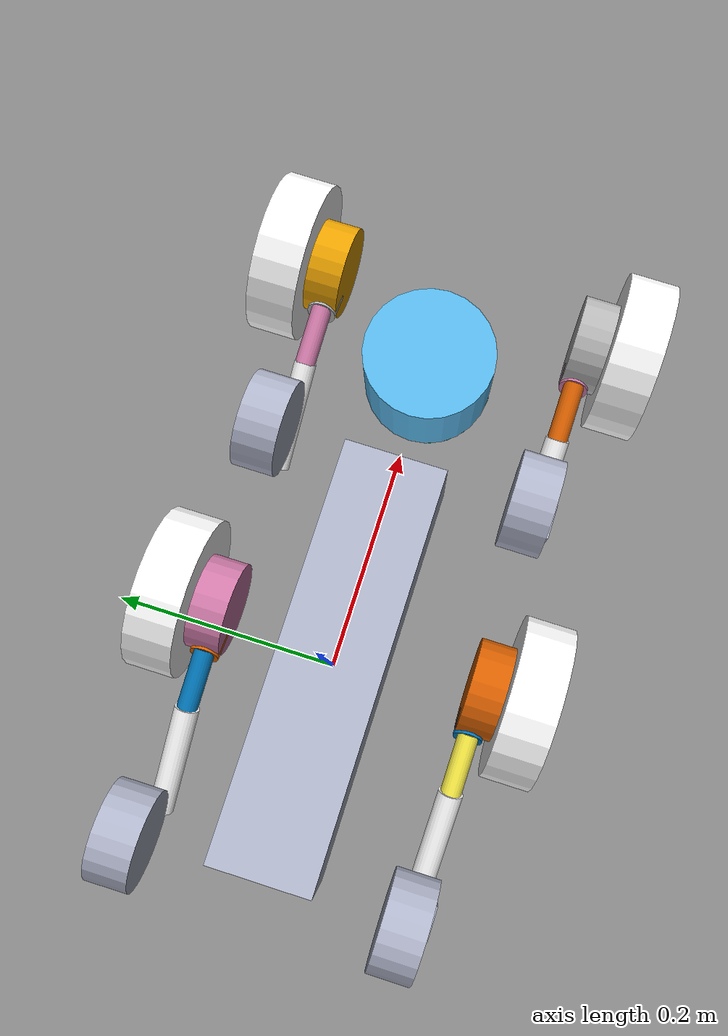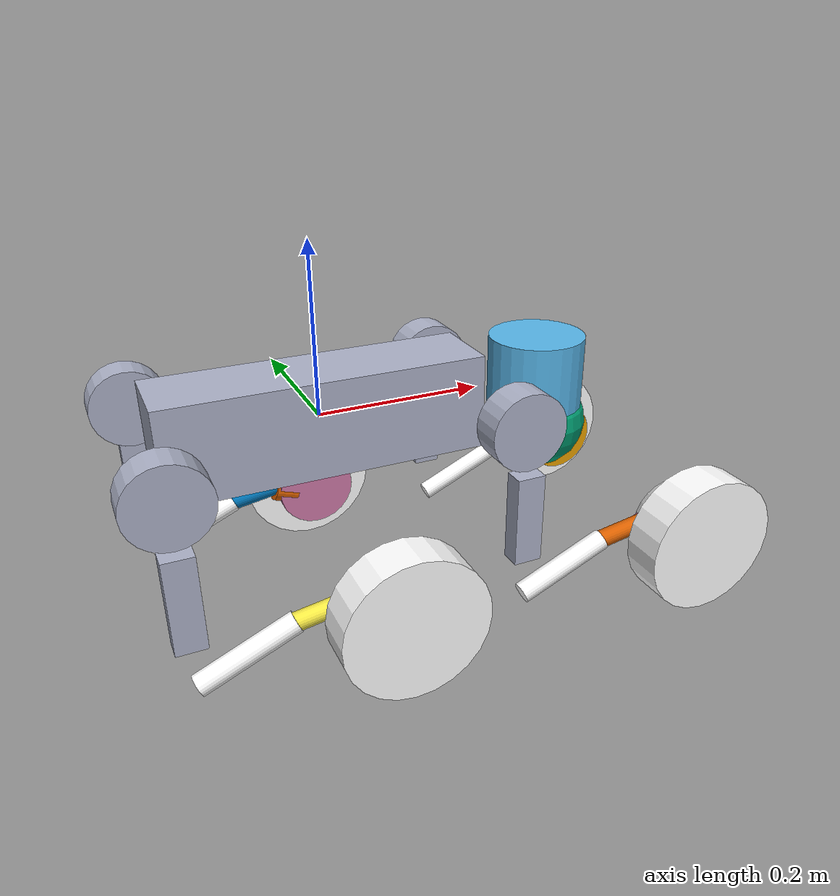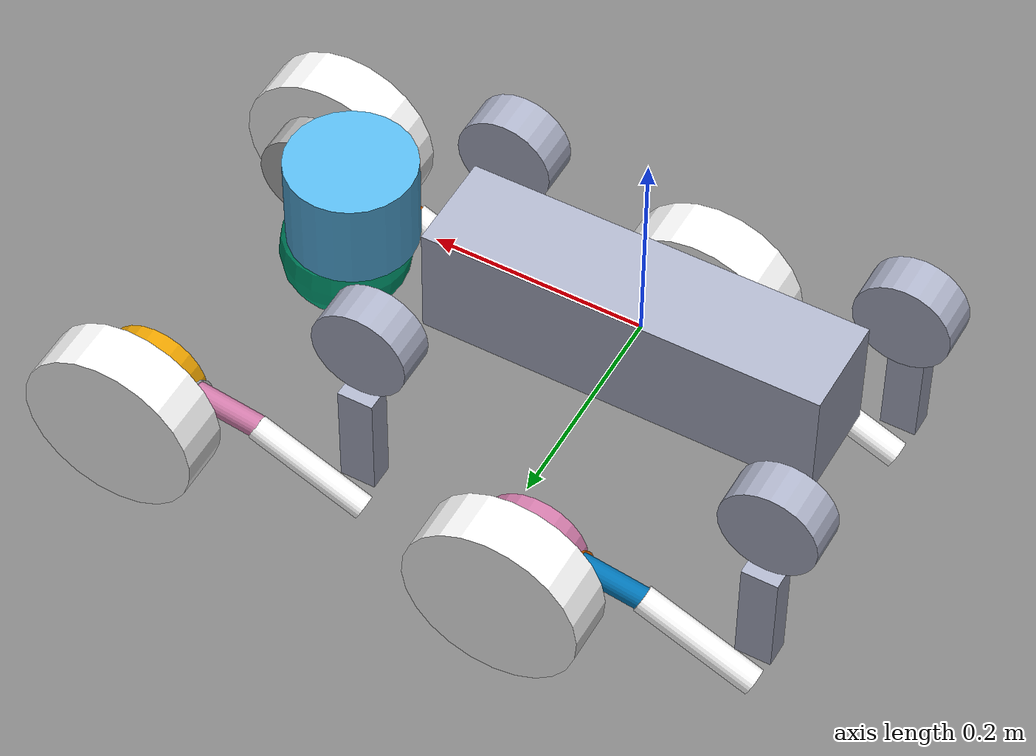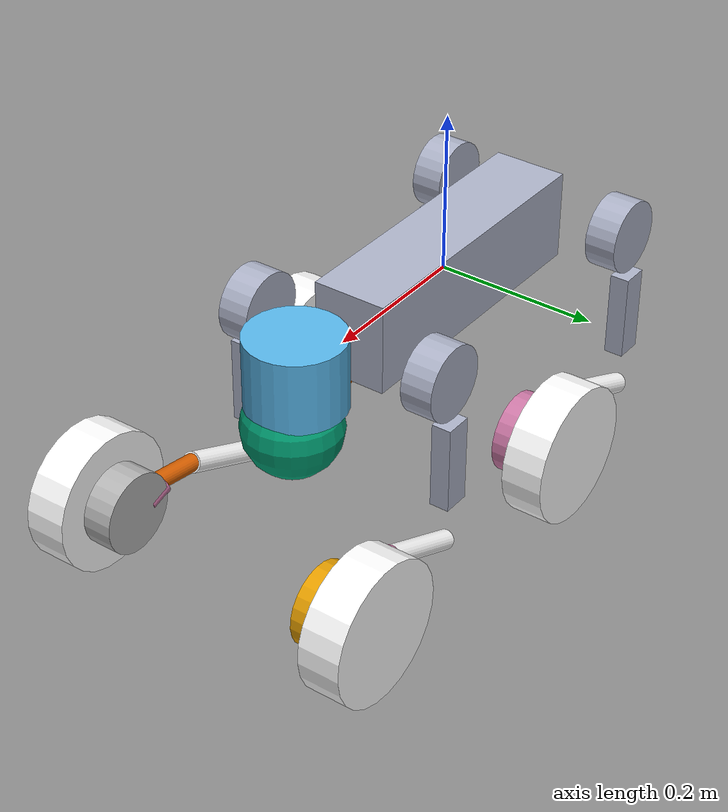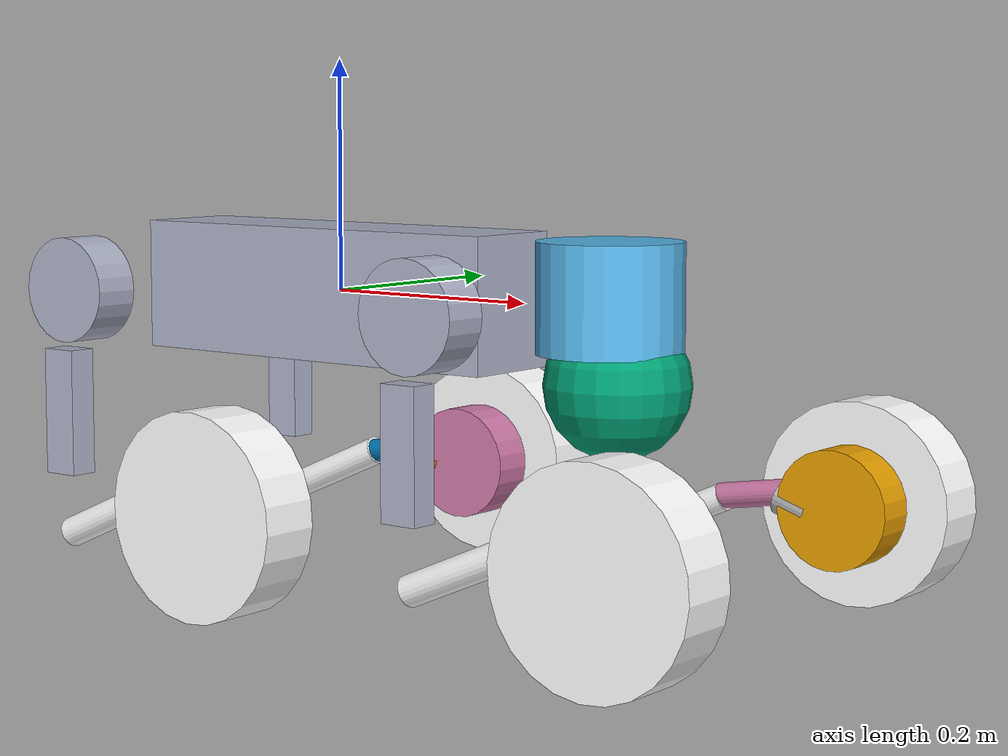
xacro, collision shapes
<?xml version="1.0"?>
<robot xmlns:xacro="http://ros.org/wiki/xacro">

  <!-- material palette (derived from the upstream per-visual colors) -->
  <material name="magi_mat_1"><color rgba="0.671705 0.692426 0.77427 1"/></material>
  <material name="magi_mat_2"><color rgba="1 1 1 1"/></material>

  <link name="base">
    <inertial>
      <origin xyz="0.021112 0 -0.005366" rpy="0 0 0" />
      <mass value="6.921" />
      <inertia ixx="0.02448" ixy="0.00012166" ixz="0.0014849" iyy="0.098077" iyz="-3.12E-05" izz="0.107" />
    </inertial>
    <visual>
      <origin xyz="0 0 0" rpy="0 0 0" />
      <geometry>
        <mesh filename="package://magi_description/meshes/base.dae" />
      </geometry>
      <material name="magi_mat_1"><color rgba="0.671705 0.692426 0.77427 1"/></material></visual>
    <collision>
      <origin rpy="0 0 0" xyz="0 0 0" />
      <geometry>
        <box size="0.3762 0.0935 0.114" />
      </geometry>
    </collision>
  </link>
  <link name="Head_upper">
    <inertial>
      <origin xyz="0 0 0" rpy="0 0 0" />
      <mass value="0.001" />
      <inertia ixx="9.6e-06" ixy="0" ixz="0" iyy="9.6e-06" iyz="0" izz="9.6e-06" />
    </inertial>
    <collision>
      <origin xyz="0 0 0" rpy="0 0 0" />
      <geometry>
        <cylinder radius="0.06" length="0.09" />
      </geometry>
    </collision>
  </link>
  <joint name="Head_upper_joint" type="fixed" dont_collapse="true">
    <origin xyz="0.285 0 0.01" rpy="0 0 0" />
    <parent link="base" />
    <child link="Head_upper" />
    <axis xyz="0 0 0" />
  </joint>
  <link name="Head_lower">
    <inertial>
      <origin xyz="0 0 0" rpy="0 0 0" />
      <mass value="0.001" />
      <inertia ixx="9.6e-06" ixy="0" ixz="0" iyy="9.6e-06" iyz="0" izz="9.6e-06" />
    </inertial>
    <collision>
      <origin xyz="0 0 0" rpy="0 0 0" />
      <geometry>
        <sphere radius="0.06" />
      </geometry>
    </collision>
  </link>
  <joint name="Head_lower_joint" type="fixed" dont_collapse="true">
    <origin xyz="0.008 0 -0.07" rpy="0 0 0" />
    <parent link="Head_upper" />
    <child link="Head_lower" />
    <axis xyz="0 0 0" />
  </joint>
  <link name="FL_hip">
    <inertial>
      <origin xyz="-0.0054 0.00194 -0.000105" rpy="0 0 0" />
      <mass value="0.678" />
      <inertia ixx="0.00048" ixy="-3.01E-06" ixz="1.11E-06" iyy="0.000884" iyz="-1.42E-06" izz="0.000596" />
    </inertial>
    <visual>
      <origin xyz="0 0 0" rpy="0 0 0" />
      <geometry>
        <mesh filename="package://magi_description/meshes/hip.dae" />
      </geometry>
      <material name="magi_mat_1"><color rgba="0.671705 0.692426 0.77427 1"/></material></visual>
    <collision>
      <origin rpy="1.5707963267948966 0 0" xyz="0 0.08 0" />
      <geometry>
        <cylinder length="0.04" radius="0.046" />
      </geometry>
    </collision>
  </link>
  <joint name="FL_hip_joint" type="revolute">
    <origin xyz="0.1934 0.0465 0" rpy="0 0 0" />
    <parent link="base" />
    <child link="FL_hip" />
    <axis xyz="1 0 0" />
    <limit lower="-1.0472" upper="1.0472" effort="23.7" velocity="30.1" />
  </joint>
  <link name="FL_thigh">
    <inertial>
      <origin xyz="-0.00374 -0.0223 -0.0327" rpy="0 0 0" />
      <mass value="1.152" />
      <inertia ixx="0.00584" ixy="8.72E-05" ixz="-0.000289" iyy="0.0058" iyz="0.000808" izz="0.00103" />
    </inertial>
    <visual>
      <origin xyz="0 0 0" rpy="0 0 0" />
      <geometry>
        <mesh filename="package://magi_description/meshes/thigh.dae" />
      </geometry>
      <material name="magi_mat_1"><color rgba="0.671705 0.692426 0.77427 1"/></material></visual>
    <collision>
      <origin rpy="0 1.5707963267948966 0" xyz="0 0 -0.1065" />
      <geometry>
        <box size="0.11 0.0245 0.034" />
      </geometry>
    </collision>
  </link>
  <joint name="FL_thigh_joint" type="revolute">
    <origin xyz="0 0.0955 0" rpy="0 0 0" />
    <parent link="FL_hip" />
    <child link="FL_thigh" />
    <axis xyz="0 1 0" />
    <limit lower="-1.5707963267948966" upper="3.4907" effort="23.7" velocity="30.1" />
  </joint>
  <link name="FL_calf">
    <inertial>
      <origin xyz="0.00548 -0.000975 -0.115" rpy="0 0 0" />
      <mass value="0.154" />
      <inertia ixx="0.00108" ixy="3.4E-07" ixz="1.72E-05" iyy="0.0011" iyz="8.28E-06" izz="3.29E-05" />
    </inertial>
    <visual>
      <origin xyz="0 0 0" rpy="0 0 0" />
      <geometry>
        <mesh filename="package://magi_description/meshes/calf.stl" />
      </geometry>
      <material name="magi_mat_2"><color rgba="1 1 1 1"/></material></visual>
    <collision>
      <origin rpy="0 -0.21 0" xyz="0.008 0 -0.06" />
      <geometry>
        <cylinder length="0.12" radius="0.012" />
      </geometry>
    </collision>
  </link>
  <joint name="FL_calf_joint" type="revolute">
    <origin xyz="0 0 -0.213" rpy="0 0 0" />
    <parent link="FL_thigh" />
    <child link="FL_calf" />
    <axis xyz="0 1 0" />
    <limit lower="-2.7227" upper="-0.83776" effort="35.55" velocity="20.07" />
  </joint>
  <link name="FL_calflower">
    <collision>
      <origin rpy="0 0 0" xyz="0 0 0" />
      <geometry>
        <cylinder length="0.065" radius="0.011" />
      </geometry>
    </collision>
  </link>
  <joint name="FL_calflower_joint" type="fixed">
    <origin xyz="0.020 0 -0.148" rpy="0 0.05 0" />
    <parent link="FL_calf" />
    <child link="FL_calflower" />
    <axis xyz="0 0 0" />
  </joint>
  <link name="FL_calflower1">
    <collision>
      <origin rpy="0 0 0" xyz="0 0 0" />
      <geometry>
        <cylinder length="0.03" radius="0.0155" />
      </geometry>
    </collision>
  </link>
  <joint name="FL_calflower1_joint" type="fixed">
    <origin xyz="-0.01 0 -0.04" rpy="0 0.48 0" />
    <parent link="FL_calflower" />
    <child link="FL_calflower1" />
    <axis xyz="0 0 0" />
  </joint>

  <link name="FL_foot_motor">
    <inertial>
      <origin xyz="0 0.0 0" rpy="0 0 0" />
      <mass value="0.646" />
      <inertia ixx="0.001" ixy="0" ixz="0" iyy="0.0016" iyz="0" izz="0.001" />
    </inertial>
    <collision>
      <origin rpy="1.5707963267948966 0 0" xyz="0 0 0" />
      <geometry>
        <cylinder length="0.05" radius="0.05" />
      </geometry>
    </collision>
  </link>

  <joint name="FL_foot_motor_joint" type="fixed">
    <origin xyz="-0.00 0.01 -0.2264" rpy="0 0.0 0" />
    <parent link="FL_calf" />
    <child link="FL_foot_motor" />
    <axis xyz="0 0 0" />
  </joint>

  <link name="FL_foot">
    <inertial>
      <origin xyz="0 0.06 0" rpy="0 0 0" />
      <mass value="0.520" />
      <inertia ixx="0.0007" ixy="0" ixz="0" iyy="0.0012" iyz="0" izz="0.0007" />
    </inertial>
    <visual>
      <origin xyz="0 0 0" rpy="0 0 0" />
      <geometry>
        <mesh filename="package://magi_description/meshes/left_wheel.dae" />
      </geometry>
      <material name="magi_mat_2"><color rgba="1 1 1 1"/></material></visual>
    <collision>
      <origin rpy="1.5707963267948966 0 0" xyz="0 0.0481 0" />
      <geometry>
        <cylinder radius="0.086" length="0.0518" />
      </geometry>
    </collision>
  </link>
  <joint name="FL_foot_joint" type="continuous">
    <origin xyz="0 0 -0.2264" rpy="0 0 0" />
    <parent link="FL_calf" />
    <child link="FL_foot" />
    <axis xyz="0 1 0" />

      <limit effort="23.7" velocity="30.1" />
  </joint>

  <link name="FR_hip">
    <inertial>
      <origin xyz="-0.0054 -0.00194 -0.000105" rpy="0 0 0" />
      <mass value="0.678" />
      <inertia ixx="0.00048" ixy="3.01E-06" ixz="1.11E-06" iyy="0.000884" iyz="1.42E-06" izz="0.000596" />
    </inertial>
    <visual>
      <origin xyz="0 0 0" rpy="3.1415 0 0" />
      <geometry>
        <mesh filename="package://magi_description/meshes/hip.dae" />
      </geometry>
      <material name="magi_mat_1"><color rgba="0.671705 0.692426 0.77427 1"/></material></visual>
    <collision>
      <origin rpy="1.5707963267948966 0 0" xyz="0 -0.08 0" />
      <geometry>
        <cylinder length="0.04" radius="0.046" />
      </geometry>
    </collision>
  </link>
  <joint name="FR_hip_joint" type="revolute">
    <origin xyz="0.1934 -0.0465 0" rpy="0 0 0" />
    <parent link="base" />
    <child link="FR_hip" />
    <axis xyz="1 0 0" />
    <limit lower="-1.0472" upper="1.0472" effort="23.7" velocity="30.1" />
  </joint>
  <link name="FR_thigh">
    <inertial>
      <origin xyz="-0.00374 0.0223 -0.0327" rpy="0 0 0" />
      <mass value="1.152" />
      <inertia ixx="0.00584" ixy="-8.72E-05" ixz="-0.000289" iyy="0.0058" iyz="-0.000808" izz="0.00103" />
    </inertial>
    <visual>
      <origin xyz="0 0 0" rpy="0 0 0" />
      <geometry>
        <mesh filename="package://magi_description/meshes/thigh_mirror.dae" />
      </geometry>
      <material name="magi_mat_1"><color rgba="0.671705 0.692426 0.77427 1"/></material></visual>
    <collision>
      <origin rpy="0 1.5707963267948966 0" xyz="0 0 -0.1065" />
      <geometry>
        <box size="0.11 0.0245 0.034" />
      </geometry>
    </collision>
  </link>
  <joint name="FR_thigh_joint" type="revolute">
    <origin xyz="0 -0.0955 0" rpy="0 0 0" />
    <parent link="FR_hip" />
    <child link="FR_thigh" />
    <axis xyz="0 1 0" />
    <limit lower="-1.5707963267948966" upper="3.4907" effort="23.7" velocity="30.1" />
  </joint>
  <link name="FR_calf">
    <inertial>
      <origin xyz="0.00548 0.000975 -0.115" rpy="0 0 0" />
      <mass value="0.154" />
      <inertia ixx="0.00108" ixy="-3.4E-07" ixz="1.72E-05" iyy="0.0011" iyz="-8.28E-06" izz="3.29E-05" />
    </inertial>
    <visual>
      <origin xyz="0 0 0" rpy="0 0 0" />
      <geometry>
        <mesh filename="package://magi_description/meshes/calf_mirror.stl" />
      </geometry>
      <material name="magi_mat_2"><color rgba="1 1 1 1"/></material></visual>
    <collision>
      <origin rpy="0 -0.2 0" xyz="0.01 0 -0.06" />
      <geometry>
        <cylinder length="0.12" radius="0.013" />
      </geometry>
    </collision>
  </link>
  <joint name="FR_calf_joint" type="revolute">
    <origin xyz="0 0 -0.213" rpy="0 0 0" />
    <parent link="FR_thigh" />
    <child link="FR_calf" />
    <axis xyz="0 1 0" />
    <limit lower="-2.7227" upper="-0.83776" effort="35.55" velocity="20.07" />
  </joint>
  <link name="FR_calflower">
    <collision>
      <origin rpy="0 0 0" xyz="0 0 0" />
      <geometry>
        <cylinder length="0.065" radius="0.011" />
      </geometry>
    </collision>
  </link>
  <joint name="FR_calflower_joint" type="fixed">
    <origin xyz="0.020 0 -0.148" rpy="0 0.05 0" />
    <parent link="FR_calf" />
    <child link="FR_calflower" />
    <axis xyz="0 0 0" />
  </joint>
  <link name="FR_calflower1">
    <collision>
      <origin rpy="0 0 0" xyz="0 0 0" />
      <geometry>
        <cylinder length="0.03" radius="0.0155" />
      </geometry>
    </collision>
  </link>
  <joint name="FR_calflower1_joint" type="fixed">
    <origin xyz="-0.01 0 -0.04" rpy="0 0.48 0" />
    <parent link="FR_calflower" />
    <child link="FR_calflower1" />
    <axis xyz="0 0 0" />
  </joint>

  <link name="FR_foot_motor">
    <inertial>
      <origin xyz="0 0.0 0" rpy="0 0 0" />
      <mass value="0.646" />
      <inertia ixx="0.001" ixy="0" ixz="0" iyy="0.0016" iyz="0" izz="0.001" />
    </inertial>
    <collision>
      <origin rpy="1.5707963267948966 0 0" xyz="0 0 0" />
      <geometry>
        <cylinder length="0.05" radius="0.05" />
      </geometry>
    </collision>
  </link>

  <joint name="FR_foot_motor_joint" type="fixed">
    <origin xyz="0.0 -0.01 -0.2264" rpy="0 0.0 0" />
    <parent link="FR_calf" />
    <child link="FR_foot_motor" />
    <axis xyz="0 0 0" />
  </joint>

  <link name="FR_foot">
    <inertial>
      <origin xyz="0 -0.06 0" rpy="0 0 0" />
      <mass value="0.520" />
      <inertia ixx="0.0007" ixy="0" ixz="0" iyy="0.0012" iyz="0" izz="0.0007" />
    </inertial>
    <visual>
      <origin xyz="0 0 0" rpy="0 0 0" />
      <geometry>
        <mesh filename="package://magi_description/meshes/right_wheel.dae" />
      </geometry>
      <material name="magi_mat_2"><color rgba="1 1 1 1"/></material></visual>
    <collision>
      <origin rpy="1.5707963267948966 0 0" xyz="0 -0.0481 0" />
      <geometry>
        <cylinder radius="0.086" length="0.0518" />
      </geometry>
    </collision>
  </link>
  <joint name="FR_foot_joint" type="continuous">
    <origin xyz="0 0 -0.2264" rpy="0 0 0" />
    <parent link="FR_calf" />
    <child link="FR_foot" />
    <axis xyz="0 1 0" />
      <limit effort="23.7" velocity="30.1" />
  </joint>

  <link name="RL_hip">
    <inertial>
      <origin xyz="0.0054 0.00194 -0.000105" rpy="0 0 0" />
      <mass value="0.678" />
      <inertia ixx="0.00048" ixy="3.01E-06" ixz="-1.11E-06" iyy="0.000884" iyz="-1.42E-06" izz="0.000596" />
    </inertial>
    <visual>
      <origin xyz="0 0 0" rpy="0 3.1415 0" />
      <geometry>
        <mesh filename="package://magi_description/meshes/hip.dae" />
      </geometry>
      <material name="magi_mat_1"><color rgba="0.671705 0.692426 0.77427 1"/></material></visual>
    <collision>
      <origin rpy="1.5707963267948966 0 0" xyz="0 0.08 0" />
      <geometry>
        <cylinder length="0.04" radius="0.046" />
      </geometry>
    </collision>
  </link>
  <joint name="RL_hip_joint" type="revolute">
    <origin xyz="-0.1934 0.0465 0" rpy="0 0 0" />
    <parent link="base" />
    <child link="RL_hip" />
    <axis xyz="1 0 0" />
    <limit lower="-1.0472" upper="1.0472" effort="23.7" velocity="30.1" />
  </joint>
  <link name="RL_thigh">
    <inertial>
      <origin xyz="-0.00374 -0.0223 -0.0327" rpy="0 0 0" />
      <mass value="1.152" />
      <inertia ixx="0.00584" ixy="8.72E-05" ixz="-0.000289" iyy="0.0058" iyz="0.000808" izz="0.00103" />
    </inertial>
    <visual>
      <origin xyz="0 0 0" rpy="0 0 0" />
      <geometry>
        <mesh filename="package://magi_description/meshes/thigh.dae" />
      </geometry>
      <material name="magi_mat_1"><color rgba="0.671705 0.692426 0.77427 1"/></material></visual>
    <collision>
      <origin rpy="0 1.5707963267948966 0" xyz="0 0 -0.1065" />
      <geometry>
        <box size="0.11 0.0245 0.034" />
      </geometry>
    </collision>
  </link>
  <joint name="RL_thigh_joint" type="revolute">
    <origin xyz="0 0.0955 0" rpy="0 0 0" />
    <parent link="RL_hip" />
    <child link="RL_thigh" />
    <axis xyz="0 1 0" />
    <limit lower="-0.5236" upper="4.5379" effort="23.7" velocity="30.1" />
  </joint>
  <link name="RL_calf">
    <inertial>
      <origin xyz="0.00548 -0.000975 -0.115" rpy="0 0 0" />
      <mass value="0.154" />
      <inertia ixx="0.00108" ixy="3.4E-07" ixz="1.72E-05" iyy="0.0011" iyz="8.28E-06" izz="3.29E-05" />
    </inertial>
    <visual>
      <origin xyz="0 0 0" rpy="0 0 0" />
      <geometry>
        <mesh filename="package://magi_description/meshes/calf.stl" />
      </geometry>
      <material name="magi_mat_2"><color rgba="1 1 1 1"/></material></visual>
    <collision>
      <origin rpy="0 -0.2 0" xyz="0.01 0 -0.06" />
      <geometry>
        <cylinder length="0.12" radius="0.013" />
      </geometry>
    </collision>
  </link>
  <joint name="RL_calf_joint" type="revolute">
    <origin xyz="0 0 -0.213" rpy="0 0 0" />
    <parent link="RL_thigh" />
    <child link="RL_calf" />
    <axis xyz="0 1 0" />
    <limit lower="-2.7227" upper="-0.83776" effort="35.55" velocity="20.07" />
  </joint>
  <link name="RL_calflower">
    <collision>
      <origin rpy="0 0 0" xyz="0 0 0" />
      <geometry>
        <cylinder length="0.065" radius="0.011" />
      </geometry>
    </collision>
  </link>
  <joint name="RL_calflower_joint" type="fixed">
    <origin xyz="0.020 0 -0.148" rpy="0 0.05 0" />
    <parent link="RL_calf" />
    <child link="RL_calflower" />
    <axis xyz="0 0 0" />
  </joint>
  <link name="RL_calflower1">
    <collision>
      <origin rpy="0 0 0" xyz="0 0 0" />
      <geometry>
        <cylinder length="0.03" radius="0.0155" />
      </geometry>
    </collision>
  </link>
  <joint name="RL_calflower1_joint" type="fixed">
    <origin xyz="-0.01 0 -0.04" rpy="0 0.48 0" />
    <parent link="RL_calflower" />
    <child link="RL_calflower1" />
    <axis xyz="0 0 0" />
  </joint>

  <link name="RL_foot_motor">
  <inertial>
    <origin xyz="0 0.0 0" rpy="0 0 0" />
    <mass value="0.646" />
    <inertia ixx="0.001" ixy="0" ixz="0" iyy="0.0016" iyz="0" izz="0.001" />
  </inertial>
  <collision>
    <origin rpy="1.5707963267948966 0 0" xyz="0 0 0" />
    <geometry>
      <cylinder length="0.05" radius="0.05" />
    </geometry>
  </collision>
</link>

<joint name="RL_foot_motor_joint" type="fixed">
  <origin xyz="0.00 0.01 -0.2264" rpy="0 0.0 0" />
  <parent link="RL_calf" />
  <child link="RL_foot_motor" />
  <axis xyz="0 0 0" />
</joint>

  <link name="RL_foot">
    <inertial>
      <origin xyz="0 0.06 0" rpy="0 0 0" />
      <mass value="0.520" />
      <inertia ixx="0.0007" ixy="0" ixz="0" iyy="0.0012" iyz="0" izz="0.0007" />
    </inertial>
    <visual>
      <origin xyz="0 0 0" rpy="0 0 0" />
      <geometry>
        <mesh filename="package://magi_description/meshes/left_wheel.dae" />
      </geometry>
      <material name="magi_mat_2"><color rgba="1 1 1 1"/></material></visual>
    <collision>
      <origin rpy="1.5707963267948966 0 0" xyz="0 0.0481 0" />
      <geometry>
        <cylinder radius="0.086" length="0.0518" />
      </geometry>
    </collision>
  </link>
  <joint name="RL_foot_joint" type="continuous">
    <origin xyz="0.0 0 -0.2264" rpy="0 0 0" />
    <parent link="RL_calf" />
    <child link="RL_foot" />
    <axis xyz="0 1 0" />
      <limit effort="23.7" velocity="30.1" />
  </joint>

  <link name="RR_hip">
    <inertial>
      <origin xyz="0.0054 -0.00194 -0.000105" rpy="0 0 0" />
      <mass value="0.678" />
      <inertia ixx="0.00048" ixy="-3.01E-06" ixz="-1.11E-06" iyy="0.000884" iyz="1.42E-06" izz="0.000596" />
    </inertial>
    <visual>
      <origin xyz="0 0 0" rpy="3.1415 3.1415 0" />
      <geometry>
        <mesh filename="package://magi_description/meshes/hip.dae" />
      </geometry>
      <material name="magi_mat_1"><color rgba="0.671705 0.692426 0.77427 1"/></material></visual>
    <collision>
      <origin rpy="1.5707963267948966 0 0" xyz="0 -0.08 0" />
      <geometry>
        <cylinder length="0.04" radius="0.046" />
      </geometry>
    </collision>
  </link>
  <joint name="RR_hip_joint" type="revolute">
    <origin xyz="-0.1934 -0.0465 0" rpy="0 0 0" />
    <parent link="base" />
    <child link="RR_hip" />
    <axis xyz="1 0 0" />
    <limit lower="-1.0472" upper="1.0472" effort="23.7" velocity="30.1" />
  </joint>
  <link name="RR_thigh">
    <inertial>
      <origin xyz="-0.00374 0.0223 -0.0327" rpy="0 0 0" />
      <mass value="1.152" />
      <inertia ixx="0.00584" ixy="-8.72E-05" ixz="-0.000289" iyy="0.0058" iyz="-0.000808" izz="0.00103" />
    </inertial>
    <visual>
      <origin xyz="0 0 0" rpy="0 0 0" />
      <geometry>
        <mesh filename="package://magi_description/meshes/thigh_mirror.dae" />
      </geometry>
      <material name="magi_mat_1"><color rgba="0.671705 0.692426 0.77427 1"/></material></visual>
    <collision>
      <origin rpy="0 1.5707963267948966 0" xyz="0 0 -0.1065" />
      <geometry>
        <box size="0.11 0.0245 0.034" />
      </geometry>
    </collision>
  </link>
  <joint name="RR_thigh_joint" type="revolute">
    <origin xyz="0 -0.0955 0" rpy="0 0 0" />
    <parent link="RR_hip" />
    <child link="RR_thigh" />
    <axis xyz="0 1 0" />
    <limit lower="-0.5236" upper="4.5379" effort="23.7" velocity="30.1" />
  </joint>
  <link name="RR_calf">
    <inertial>
      <origin xyz="0.00548 0.000975 -0.115" rpy="0 0 0" />
      <mass value="0.154" />
      <inertia ixx="0.00108" ixy="-3.4E-07" ixz="1.72E-05" iyy="0.0011" iyz="-8.28E-06" izz="3.29E-05" />
    </inertial>
    <visual>
      <origin xyz="0 0 0" rpy="0 0 0" />
      <geometry>
        <mesh filename="package://magi_description/meshes/calf_mirror.stl" />
      </geometry>
      <material name="magi_mat_2"><color rgba="1 1 1 1"/></material></visual>
    <collision>
      <origin rpy="0 -0.2 0" xyz="0.01 0 -0.06" />
      <geometry>
        <cylinder length="0.12" radius="0.013" />
      </geometry>
    </collision>
  </link>
  <joint name="RR_calf_joint" type="revolute">
    <origin xyz="0 0 -0.213" rpy="0 0 0" />
    <parent link="RR_thigh" />
    <child link="RR_calf" />
    <axis xyz="0 1 0" />
    <limit lower="-2.7227" upper="-0.83776" effort="35.55" velocity="20.07" />
  </joint>
  <link name="RR_calflower">
    <collision>
      <origin rpy="0 0 0" xyz="0 0 0" />
      <geometry>
        <cylinder length="0.065" radius="0.011" />
      </geometry>
    </collision>
  </link>
  <joint name="RR_calflower_joint" type="fixed">
    <origin xyz="0.020 0 -0.148" rpy="0 0.05 0" />
    <parent link="RR_calf" />
    <child link="RR_calflower" />
    <axis xyz="0 0 0" />
  </joint>
  <link name="RR_calflower1">
    <collision>
      <origin rpy="0 0 0" xyz="0 0 0" />
      <geometry>
        <cylinder length="0.03" radius="0.0155" />
      </geometry>
    </collision>
  </link>
  <joint name="RR_calflower1_joint" type="fixed">
    <origin xyz="-0.01 0 -0.04" rpy="0 0.48 0" />
    <parent link="RR_calflower" />
    <child link="RR_calflower1" />
    <axis xyz="0 0 0" />
  </joint>

  <link name="RR_foot_motor">
  <inertial>
    <origin xyz="0 0.0 0" rpy="0 0 0" />
    <mass value="0.646" />
    <inertia ixx="0.001" ixy="0" ixz="0" iyy="0.0016" iyz="0" izz="0.001" />
  </inertial>
  <collision>
    <origin rpy="1.5707963267948966 0 0" xyz="0 0 0" />
    <geometry>
      <cylinder length="0.05" radius="0.05" />
    </geometry>
  </collision>
</link>

<joint name="RR_foot_motor_joint" type="fixed">
  <origin xyz="0.00 -0.01 -0.2264" rpy="0 0.0 0" />
  <parent link="RR_calf" />
  <child link="RR_foot_motor" />
  <axis xyz="0 0 0" />
</joint>

  <link name="RR_foot">
    <inertial>
      <origin xyz="0 -0.06 0" rpy="0 0 0" />
      <mass value="0.520" />
      <inertia ixx="0.0007" ixy="0" ixz="0" iyy="0.0012" iyz="0" izz="0.0007" />
    </inertial>
    <visual>
      <origin xyz="0 0 0" rpy="0 0 0" />
      <geometry>
        <mesh filename="package://magi_description/meshes/right_wheel.dae" />
      </geometry>
      <material name="magi_mat_2"><color rgba="1 1 1 1"/></material></visual>
    <collision>
      <origin rpy="1.5707963267948966 0 0" xyz="0 -0.0481 0" />
      <geometry>
        <cylinder radius="0.086" length="0.0518" />
      </geometry>
    </collision>
  </link>
  <joint name="RR_foot_joint" type="continuous">
    <origin xyz="-0.0 0 -0.2264" rpy="0 0 0" />
    <parent link="RR_calf" />
    <child link="RR_foot" />
    <axis xyz="0 1 0" />
      <limit effort="23.7" velocity="30.1" />
  </joint>
  <link name="imu">
    <inertial>
      <origin xyz="0 0 0" rpy="0 0 0" />
      <mass value="0" />
      <inertia ixx="0" ixy="0" ixz="0" iyy="0" iyz="0" izz="0" />
    </inertial>
  </link>
  <joint name="imu_joint" type="fixed">
    <origin xyz="-0.02557 0 0.04232" rpy="0 0 0" />
    <parent link="base" />
    <child link="imu" />
    <axis xyz="0 0 0" />
  </joint>
  <link name="radar">
    <inertial>
      <origin xyz="0 0 0" rpy="0 0 0" />
      <mass value="0" />
      <inertia ixx="0" ixy="0" ixz="0" iyy="0" iyz="0" izz="0" />
    </inertial>
  </link>
  <joint name="radar_joint" type="fixed">
    <origin xyz="0.28945 0 -0.046825" rpy="0 2.8782 0" />
    <parent link="base" />
    <child link="radar" />
    <axis xyz="0 0 0" />
  </joint>

</robot>
